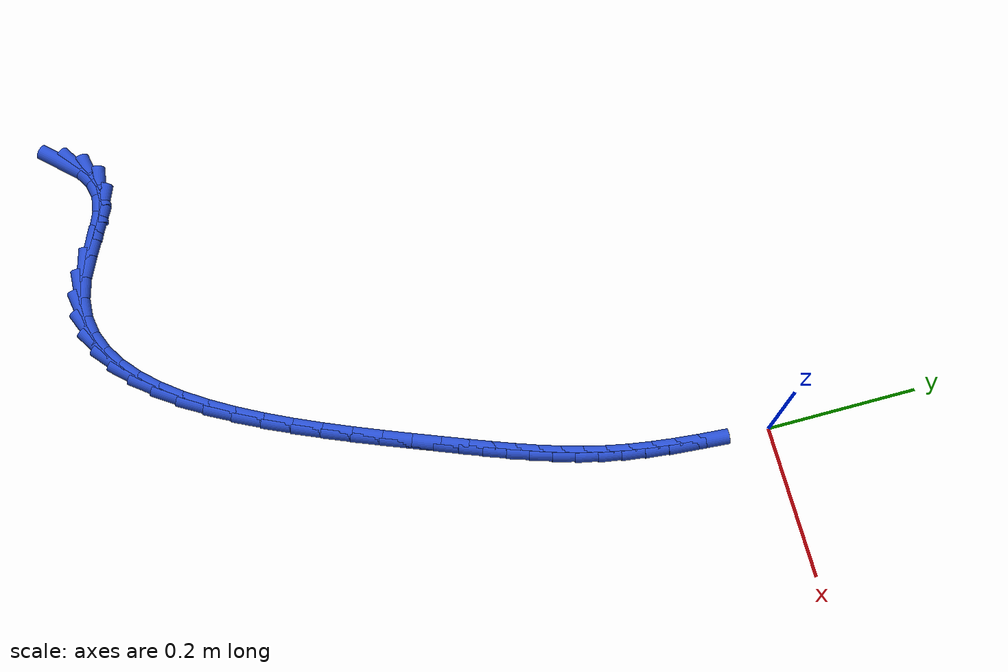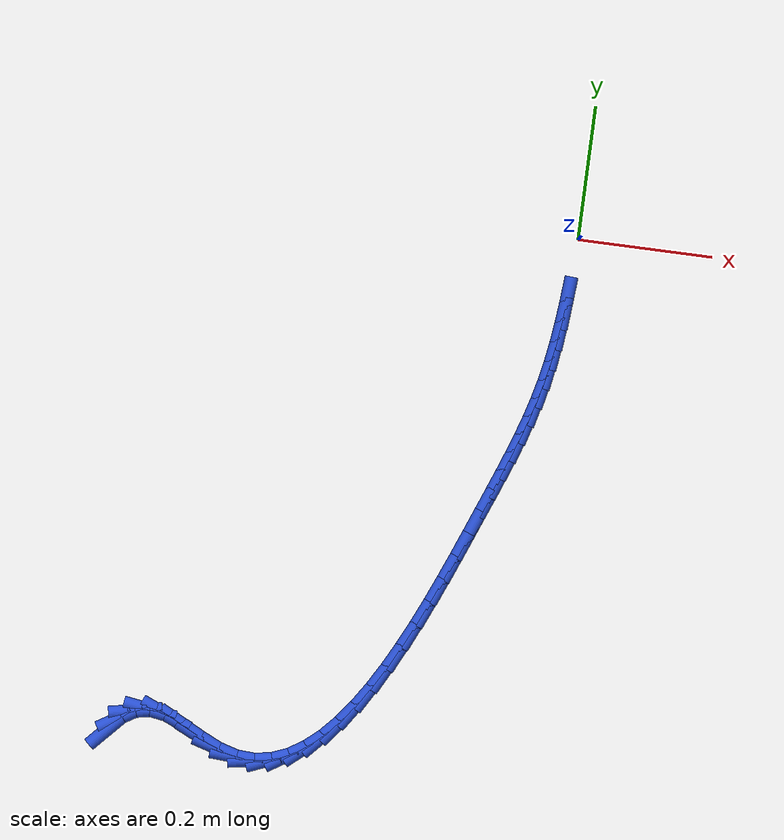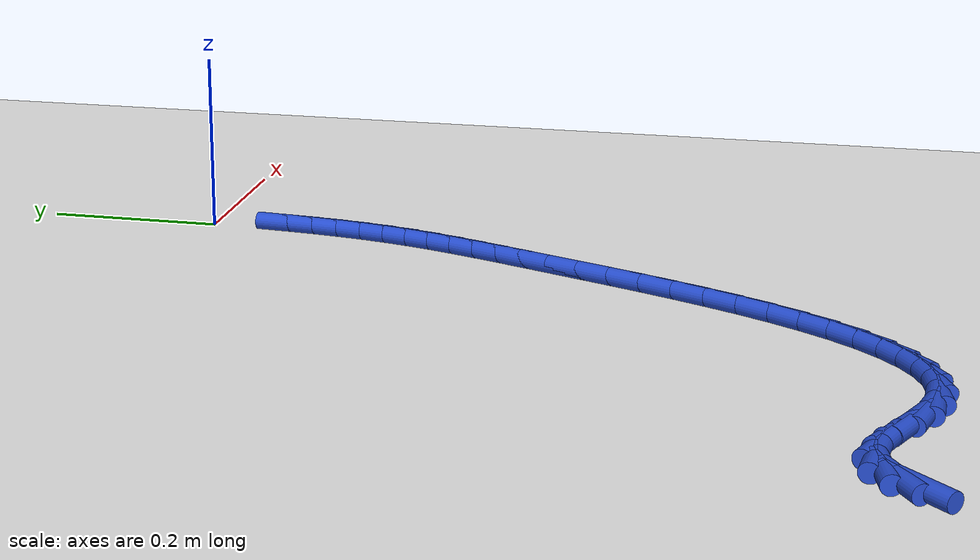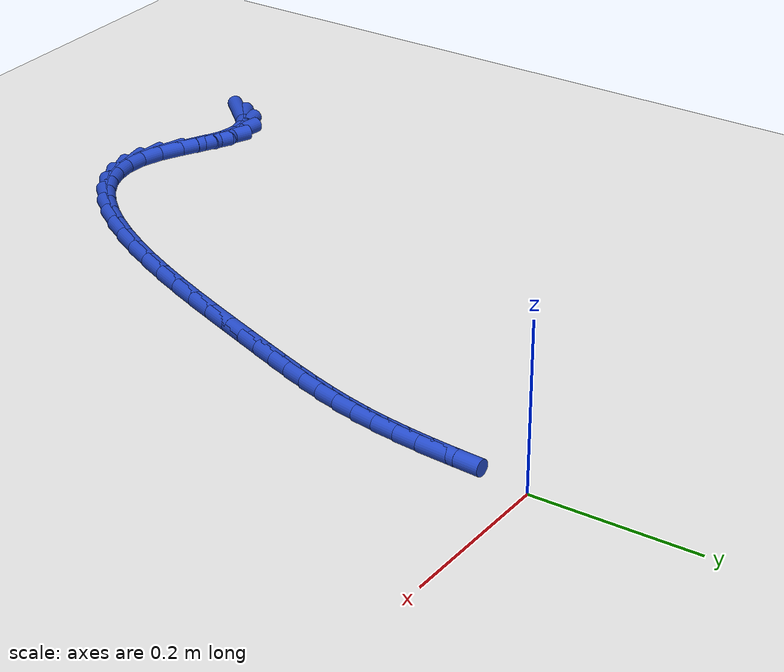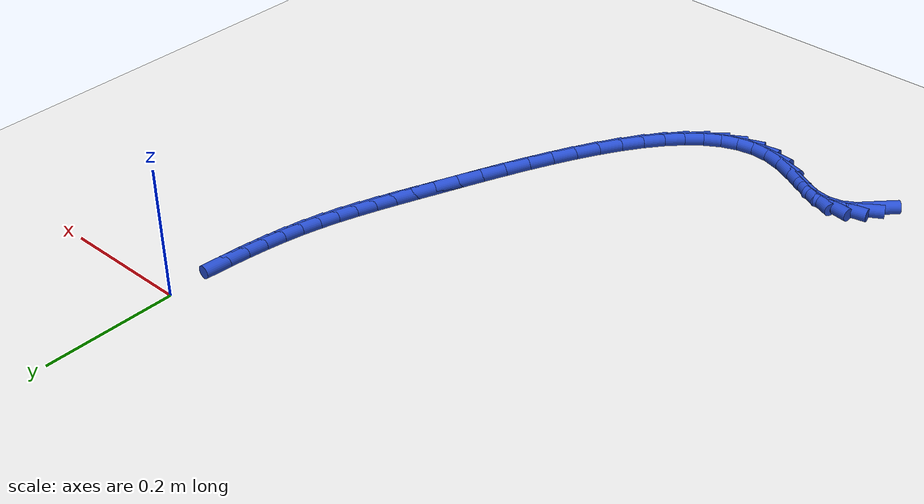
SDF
<sdf version="1.6">
 <world name="default">
  <model name="ground_plane">
   <static>1</static>
   <link name="link">
    <collision name="collision">
     <geometry><plane><normal>0 0 1</normal><size>100 100</size></plane></geometry>
     <surface><friction><ode><mu>100</mu><mu2>50</mu2></ode></friction></surface>
    </collision>
    <visual name="visual">
     <cast_shadows>0</cast_shadows>
     <geometry><plane><normal>0 0 1</normal><size>100 100</size></plane></geometry>
     <material>
      <script><uri>file://media/materials/scripts/gazebo.material</uri><name>Gazebo/WhiteGlow</name></script>
     </material>
    </visual>
   </link>
  </model>
  <model name="line">
   <link name="link_252">
    <pose>-0.59565931395077 -0.8043683710258055 0.01 0 1.57 0.8201686192486636</pose>
    <collision name="collision">
     <geometry><cylinder><radius>0.01</radius><length>0.08</length></cylinder></geometry>
    </collision>
    <visual name="visual">
     <material>
      <script><name>Gazebo/Blue</name><uri>file://media/materials/scripts/gazebo.material</uri></script>
     </material>
     <geometry><cylinder><radius>0.01</radius><length>0.08</length></cylinder></geometry>
    </visual>
   </link>
   <link name="link_253">
    <pose>-0.579389070681062 -0.786925432426007 0.01 0 1.57 0.5462186474628243</pose>
    <collision name="collision">
     <geometry><cylinder><radius>0.01</radius><length>0.08</length></cylinder></geometry>
    </collision>
    <visual name="visual">
     <material>
      <script><name>Gazebo/Blue</name><uri>file://media/materials/scripts/gazebo.material</uri></script>
     </material>
     <geometry><cylinder><radius>0.01</radius><length>0.08</length></cylinder></geometry>
    </visual>
   </link>
   <link name="link_254">
    <pose>-0.5609806729158402 -0.7757347011065703 0.01 0 1.57 0.1958724203622399</pose>
    <collision name="collision">
     <geometry><cylinder><radius>0.01</radius><length>0.08</length></cylinder></geometry>
    </collision>
    <visual name="visual">
     <material>
      <script><name>Gazebo/Blue</name><uri>file://media/materials/scripts/gazebo.material</uri></script>
     </material>
     <geometry><cylinder><radius>0.01</radius><length>0.08</length></cylinder></geometry>
    </visual>
   </link>
   <link name="link_255">
    <pose>-0.5400730387388119 -0.7715862832637821 0.01 0 1.57 -0.15377270773630836</pose>
    <collision name="collision">
     <geometry><cylinder><radius>0.01</radius><length>0.08</length></cylinder></geometry>
    </collision>
    <visual name="visual">
     <material>
      <script><name>Gazebo/Blue</name><uri>file://media/materials/scripts/gazebo.material</uri></script>
     </material>
     <geometry><cylinder><radius>0.01</radius><length>0.08</length></cylinder></geometry>
    </visual>
   </link>
   <link name="link_256">
    <pose>-0.5163051045380244 -0.7752702256300861 0.01 0 1.57 -0.39954025089694306</pose>
    <collision name="collision">
     <geometry><cylinder><radius>0.01</radius><length>0.08</length></cylinder></geometry>
    </collision>
    <visual name="visual">
     <material>
      <script><name>Gazebo/Blue</name><uri>file://media/materials/scripts/gazebo.material</uri></script>
     </material>
     <geometry><cylinder><radius>0.01</radius><length>0.08</length></cylinder></geometry>
    </visual>
   </link>
   <link name="link_257">
    <pose>-0.4896378031542967 -0.7865305307836246 0.01 0 1.57 -0.48139456710743556</pose>
    <collision name="collision">
     <geometry><cylinder><radius>0.01</radius><length>0.08</length></cylinder></geometry>
    </collision>
    <visual name="visual">
     <material>
      <script><name>Gazebo/Blue</name><uri>file://media/materials/scripts/gazebo.material</uri></script>
     </material>
     <geometry><cylinder><radius>0.01</radius><length>0.08</length></cylinder></geometry>
    </visual>
   </link>
   <link name="link_258">
    <pose>-0.46117470087745516 -0.8013992192929448 0.01 0 1.57 -0.4422518102911651</pose>
    <collision name="collision">
     <geometry><cylinder><radius>0.01</radius><length>0.08</length></cylinder></geometry>
    </collision>
    <visual name="visual">
     <material>
      <script><name>Gazebo/Blue</name><uri>file://media/materials/scripts/gazebo.material</uri></script>
     </material>
     <geometry><cylinder><radius>0.01</radius><length>0.08</length></cylinder></geometry>
    </visual>
   </link>
   <link name="link_259">
    <pose>-0.4322727036357272 -0.815085307480678 0.01 0 1.57 -0.28246503358641906</pose>
    <collision name="collision">
     <geometry><cylinder><radius>0.01</radius><length>0.08</length></cylinder></geometry>
    </collision>
    <visual name="visual">
     <material>
      <script><name>Gazebo/Blue</name><uri>file://media/materials/scripts/gazebo.material</uri></script>
     </material>
     <geometry><cylinder><radius>0.01</radius><length>0.08</length></cylinder></geometry>
    </visual>
   </link>
   <link name="link_260">
    <pose>-0.40417305579895396 -0.823240530170891 0.01 0 1.57 -0.059956599339056275</pose>
    <collision name="collision">
     <geometry><cylinder><radius>0.01</radius><length>0.08</length></cylinder></geometry>
    </collision>
    <visual name="visual">
     <material>
      <script><name>Gazebo/Blue</name><uri>file://media/materials/scripts/gazebo.material</uri></script>
     </material>
     <geometry><cylinder><radius>0.01</radius><length>0.08</length></cylinder></geometry>
    </visual>
   </link>
   <link name="link_261">
    <pose>-0.37724431169777484 -0.824857023542819 0.01 0 1.57 0.16921304119151293</pose>
    <collision name="collision">
     <geometry><cylinder><radius>0.01</radius><length>0.08</length></cylinder></geometry>
    </collision>
    <visual name="visual">
     <material>
      <script><name>Gazebo/Blue</name><uri>file://media/materials/scripts/gazebo.material</uri></script>
     </material>
     <geometry><cylinder><radius>0.01</radius><length>0.08</length></cylinder></geometry>
    </visual>
   </link>
   <link name="link_262">
    <pose>-0.3514567761518485 -0.8204513060264584 0.01 0 1.57 0.38163745794792014</pose>
    <collision name="collision">
     <geometry><cylinder><radius>0.01</radius><length>0.08</length></cylinder></geometry>
    </collision>
    <visual name="visual">
     <material>
      <script><name>Gazebo/Blue</name><uri>file://media/materials/scripts/gazebo.material</uri></script>
     </material>
     <geometry><cylinder><radius>0.01</radius><length>0.08</length></cylinder></geometry>
    </visual>
   </link>
   <link name="link_263">
    <pose>-0.32677871800760233 -0.8105476891598239 0.01 0 1.57 0.5624599431094514</pose>
    <collision name="collision">
     <geometry><cylinder><radius>0.01</radius><length>0.08</length></cylinder></geometry>
    </collision>
    <visual name="visual">
     <material>
      <script><name>Gazebo/Blue</name><uri>file://media/materials/scripts/gazebo.material</uri></script>
     </material>
     <geometry><cylinder><radius>0.01</radius><length>0.08</length></cylinder></geometry>
    </visual>
   </link>
   <link name="link_264">
    <pose>-0.30317840611146335 -0.7956704844809294 0.01 0 1.57 0.7084786885374285</pose>
    <collision name="collision">
     <geometry><cylinder><radius>0.01</radius><length>0.08</length></cylinder></geometry>
    </collision>
    <visual name="visual">
     <material>
      <script><name>Gazebo/Blue</name><uri>file://media/materials/scripts/gazebo.material</uri></script>
     </material>
     <geometry><cylinder><radius>0.01</radius><length>0.08</length></cylinder></geometry>
    </visual>
   </link>
   <link name="link_265">
    <pose>-0.28062410930985976 -0.7763440035277905 0.01 0 1.57 0.8235884961245488</pose>
    <collision name="collision">
     <geometry><cylinder><radius>0.01</radius><length>0.08</length></cylinder></geometry>
    </collision>
    <visual name="visual">
     <material>
      <script><name>Gazebo/Blue</name><uri>file://media/materials/scripts/gazebo.material</uri></script>
     </material>
     <geometry><cylinder><radius>0.01</radius><length>0.08</length></cylinder></geometry>
    </visual>
   </link>
   <link name="link_266">
    <pose>-0.2590840964492171 -0.75309255783842 0.01 0 1.57 0.9137856218878158</pose>
    <collision name="collision">
     <geometry><cylinder><radius>0.01</radius><length>0.08</length></cylinder></geometry>
    </collision>
    <visual name="visual">
     <material>
      <script><name>Gazebo/Blue</name><uri>file://media/materials/scripts/gazebo.material</uri></script>
     </material>
     <geometry><cylinder><radius>0.01</radius><length>0.08</length></cylinder></geometry>
    </visual>
   </link>
   <link name="link_267">
    <pose>-0.23852663637596339 -0.7264404589508329 0.01 0 1.57 0.9846479337663405</pose>
    <collision name="collision">
     <geometry><cylinder><radius>0.01</radius><length>0.08</length></cylinder></geometry>
    </collision>
    <visual name="visual">
     <material>
      <script><name>Gazebo/Blue</name><uri>file://media/materials/scripts/gazebo.material</uri></script>
     </material>
     <geometry><cylinder><radius>0.01</radius><length>0.08</length></cylinder></geometry>
    </visual>
   </link>
   <link name="link_268">
    <pose>-0.2189199979365259 -0.696912018403044 0.01 0 1.57 1.0406039882947455</pose>
    <collision name="collision">
     <geometry><cylinder><radius>0.01</radius><length>0.08</length></cylinder></geometry>
    </collision>
    <visual name="visual">
     <material>
      <script><name>Gazebo/Blue</name><uri>file://media/materials/scripts/gazebo.material</uri></script>
     </material>
     <geometry><cylinder><radius>0.01</radius><length>0.08</length></cylinder></geometry>
    </visual>
   </link>
   <link name="link_269">
    <pose>-0.2002324499773318 -0.6650315477330673 0.01 0 1.57 1.0849479041175447</pose>
    <collision name="collision">
     <geometry><cylinder><radius>0.01</radius><length>0.08</length></cylinder></geometry>
    </collision>
    <visual name="visual">
     <material>
      <script><name>Gazebo/Blue</name><uri>file://media/materials/scripts/gazebo.material</uri></script>
     </material>
     <geometry><cylinder><radius>0.01</radius><length>0.08</length></cylinder></geometry>
    </visual>
   </link>
   <link name="link_270">
    <pose>-0.18243226134480833 -0.6313233584789172 0.01 0 1.57 1.120054801012595</pose>
    <collision name="collision">
     <geometry><cylinder><radius>0.01</radius><length>0.08</length></cylinder></geometry>
    </collision>
    <visual name="visual">
     <material>
      <script><name>Gazebo/Blue</name><uri>file://media/materials/scripts/gazebo.material</uri></script>
     </material>
     <geometry><cylinder><radius>0.01</radius><length>0.08</length></cylinder></geometry>
    </visual>
   </link>
   <link name="link_271">
    <pose>-0.1654877008853827 -0.5963117621786083 0.01 0 1.57 1.1475973634024688</pose>
    <collision name="collision">
     <geometry><cylinder><radius>0.01</radius><length>0.08</length></cylinder></geometry>
    </collision>
    <visual name="visual">
     <material>
      <script><name>Gazebo/Blue</name><uri>file://media/materials/scripts/gazebo.material</uri></script>
     </material>
     <geometry><cylinder><radius>0.01</radius><length>0.08</length></cylinder></geometry>
    </visual>
   </link>
   <link name="link_272">
    <pose>-0.14936703744548216 -0.5605210703701551 0.01 0 1.57 1.1687102106253675</pose>
    <collision name="collision">
     <geometry><cylinder><radius>0.01</radius><length>0.08</length></cylinder></geometry>
    </collision>
    <visual name="visual">
     <material>
      <script><name>Gazebo/Blue</name><uri>file://media/materials/scripts/gazebo.material</uri></script>
     </material>
     <geometry><cylinder><radius>0.01</radius><length>0.08</length></cylinder></geometry>
    </visual>
   </link>
   <link name="link_273">
    <pose>-0.13403853987153386 -0.5244755945915717 0.01 0 1.57 1.1840961846076463</pose>
    <collision name="collision">
     <geometry><cylinder><radius>0.01</radius><length>0.08</length></cylinder></geometry>
    </collision>
    <visual name="visual">
     <material>
      <script><name>Gazebo/Blue</name><uri>file://media/materials/scripts/gazebo.material</uri></script>
     </material>
     <geometry><cylinder><radius>0.01</radius><length>0.08</length></cylinder></geometry>
    </visual>
   </link>
   <link name="link_274">
    <pose>-0.1194704770099651 -0.48869964638087277 0.01 0 1.57 1.1940779985133803</pose>
    <collision name="collision">
     <geometry><cylinder><radius>0.01</radius><length>0.08</length></cylinder></geometry>
    </collision>
    <visual name="visual">
     <material>
      <script><name>Gazebo/Blue</name><uri>file://media/materials/scripts/gazebo.material</uri></script>
     </material>
     <geometry><cylinder><radius>0.01</radius><length>0.08</length></cylinder></geometry>
    </visual>
   </link>
   <link name="link_275">
    <pose>-0.10563111770720301 -0.4537175372760725 0.01 0 1.57 1.1985936874856975</pose>
    <collision name="collision">
     <geometry><cylinder><radius>0.01</radius><length>0.08</length></cylinder></geometry>
    </collision>
    <visual name="visual">
     <material>
      <script><name>Gazebo/Blue</name><uri>file://media/materials/scripts/gazebo.material</uri></script>
     </material>
     <geometry><cylinder><radius>0.01</radius><length>0.08</length></cylinder></geometry>
    </visual>
   </link>
   <link name="link_276">
    <pose>-0.09248873080967487 -0.42005357881518557 0.01 0 1.57 1.1991339707949629</pose>
    <collision name="collision">
     <geometry><cylinder><radius>0.01</radius><length>0.08</length></cylinder></geometry>
    </collision>
    <visual name="visual">
     <material>
      <script><name>Gazebo/Blue</name><uri>file://media/materials/scripts/gazebo.material</uri></script>
     </material>
     <geometry><cylinder><radius>0.01</radius><length>0.08</length></cylinder></geometry>
    </visual>
   </link>
   <link name="link_277">
    <pose>-0.08002900716618251 -0.3880872777426482 0.01 0 1.57 1.2036609827462357</pose>
    <collision name="collision">
     <geometry><cylinder><radius>0.01</radius><length>0.08</length></cylinder></geometry>
    </collision>
    <visual name="visual">
     <material>
      <script><name>Gazebo/Blue</name><uri>file://media/materials/scripts/gazebo.material</uri></script>
     </material>
     <geometry><cylinder><radius>0.01</radius><length>0.08</length></cylinder></geometry>
    </visual>
   </link>
   <link name="link_278">
    <pose>-0.06830838111142785 -0.35761014892615955 0.01 0 1.57 1.2149412117793157</pose>
    <collision name="collision">
     <geometry><cylinder><radius>0.01</radius><length>0.08</length></cylinder></geometry>
    </collision>
    <visual name="visual">
     <material>
      <script><name>Gazebo/Blue</name><uri>file://media/materials/scripts/gazebo.material</uri></script>
     </material>
     <geometry><cylinder><radius>0.01</radius><length>0.08</length></cylinder></geometry>
    </visual>
   </link>
   <link name="link_279">
    <pose>-0.05740124070490138 -0.32826448297342514 0.01 0 1.57 1.233526179489783</pose>
    <collision name="collision">
     <geometry><cylinder><radius>0.01</radius><length>0.08</length></cylinder></geometry>
    </collision>
    <visual name="visual">
     <material>
      <script><name>Gazebo/Blue</name><uri>file://media/materials/scripts/gazebo.material</uri></script>
     </material>
     <geometry><cylinder><radius>0.01</radius><length>0.08</length></cylinder></geometry>
    </visual>
   </link>
   <link name="link_280">
    <pose>-0.04738197400831886 -0.29969257047365827 0.01 0 1.57 1.2595758059230624</pose>
    <collision name="collision">
     <geometry><cylinder><radius>0.01</radius><length>0.08</length></cylinder></geometry>
    </collision>
    <visual name="visual">
     <material>
      <script><name>Gazebo/Blue</name><uri>file://media/materials/scripts/gazebo.material</uri></script>
     </material>
     <geometry><cylinder><radius>0.01</radius><length>0.08</length></cylinder></geometry>
    </visual>
   </link>
   <link name="link_281">
    <pose>-0.03832496908339508 -0.2715367020160692 0.01 0 1.57 1.2927438526263906</pose>
    <collision name="collision">
     <geometry><cylinder><radius>0.01</radius><length>0.08</length></cylinder></geometry>
    </collision>
    <visual name="visual">
     <material>
      <script><name>Gazebo/Blue</name><uri>file://media/materials/scripts/gazebo.material</uri></script>
     </material>
     <geometry><cylinder><radius>0.01</radius><length>0.08</length></cylinder></geometry>
    </visual>
   </link>
   <link name="link_282">
    <pose>-0.03030461399184586 -0.2434391681898712 0.01 0 1.57 1.332121804530313</pose>
    <collision name="collision">
     <geometry><cylinder><radius>0.01</radius><length>0.08</length></cylinder></geometry>
    </collision>
    <visual name="visual">
     <material>
      <script><name>Gazebo/Blue</name><uri>file://media/materials/scripts/gazebo.material</uri></script>
     </material>
     <geometry><cylinder><radius>0.01</radius><length>0.08</length></cylinder></geometry>
    </visual>
   </link>
   <link name="link_283">
    <pose>-0.02339529679538665 -0.21504225958427664 0.01 0 1.57 1.3746675131635653</pose>
    <collision name="collision">
     <geometry><cylinder><radius>0.01</radius><length>0.08</length></cylinder></geometry>
    </collision>
    <visual name="visual">
     <material>
      <script><name>Gazebo/Blue</name><uri>file://media/materials/scripts/gazebo.material</uri></script>
     </material>
     <geometry><cylinder><radius>0.01</radius><length>0.08</length></cylinder></geometry>
    </visual>
   </link>
   <link name="link_284">
    <pose>-0.017635521962974708 -0.1860524756512454 0.01 0 1.57 1.4128797919510792</pose>
    <collision name="collision">
     <geometry><cylinder><radius>0.01</radius><length>0.08</length></cylinder></geometry>
    </collision>
    <visual name="visual">
     <material>
      <script><name>Gazebo/Blue</name><uri>file://media/materials/scripts/gazebo.material</uri></script>
     </material>
     <geometry><cylinder><radius>0.01</radius><length>0.08</length></cylinder></geometry>
    </visual>
   </link>
   <link name="link_285">
    <pose>-0.012919176722253949 -0.15643508894444455 0.01 0 1.57 1.4451823986582397</pose>
    <collision name="collision">
     <geometry><cylinder><radius>0.01</radius><length>0.08</length></cylinder></geometry>
    </collision>
    <visual name="visual">
     <material>
      <script><name>Gazebo/Blue</name><uri>file://media/materials/scripts/gazebo.material</uri></script>
     </material>
     <geometry><cylinder><radius>0.01</radius><length>0.08</length></cylinder></geometry>
    </visual>
   </link>
   <link name="link_286">
    <pose>-0.009103721233720176 -0.12622055335461005 0.01 0 1.57 1.4718037613589334</pose>
    <collision name="collision">
     <geometry><cylinder><radius>0.01</radius><length>0.08</length></cylinder></geometry>
    </collision>
    <visual name="visual">
     <material>
      <script><name>Gazebo/Blue</name><uri>file://media/materials/scripts/gazebo.material</uri></script>
     </material>
     <geometry><cylinder><radius>0.01</radius><length>0.08</length></cylinder></geometry>
    </visual>
   </link>
   <link name="link_287">
    <pose>-0.0060466156573006375 -0.09543932277349507 0.01 0 1.57 1.4930005047196546</pose>
    <collision name="collision">
     <geometry><cylinder><radius>0.01</radius><length>0.08</length></cylinder></geometry>
    </collision>
    <visual name="visual">
     <material>
      <script><name>Gazebo/Blue</name><uri>file://media/materials/scripts/gazebo.material</uri></script>
     </material>
     <geometry><cylinder><radius>0.01</radius><length>0.08</length></cylinder></geometry>
    </visual>
   </link>
  </model>
 </world>
</sdf>
